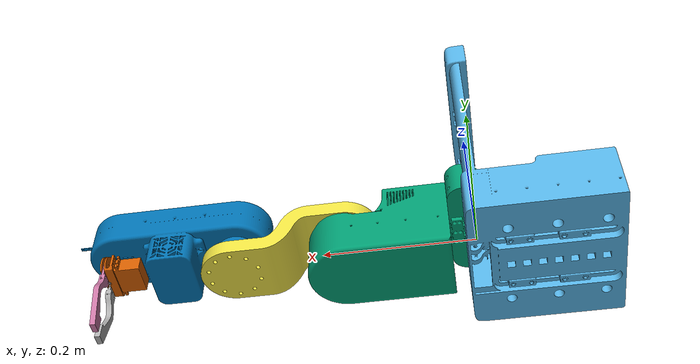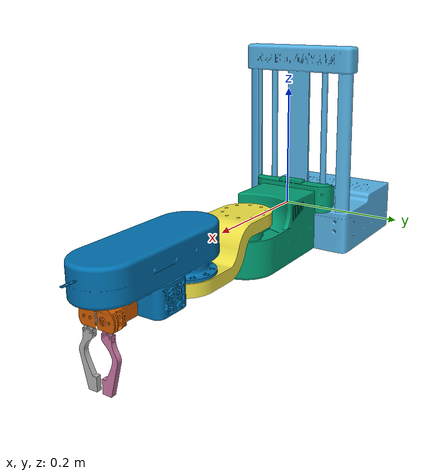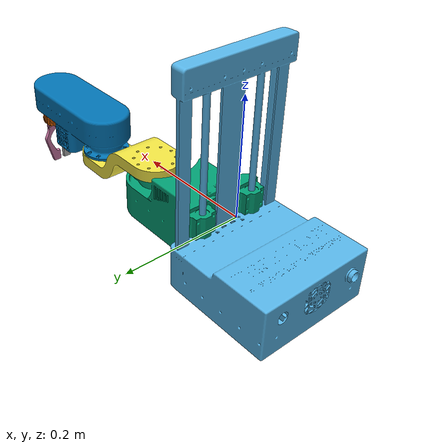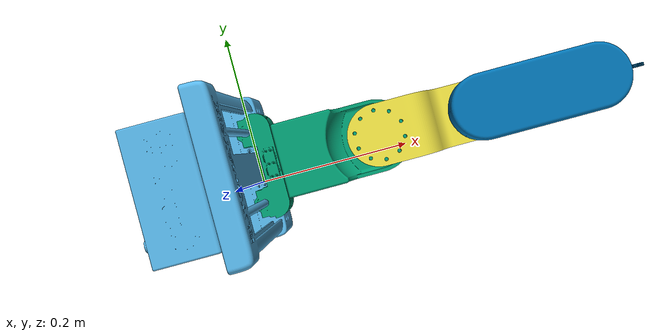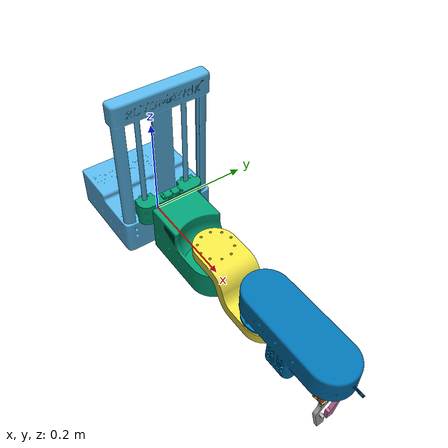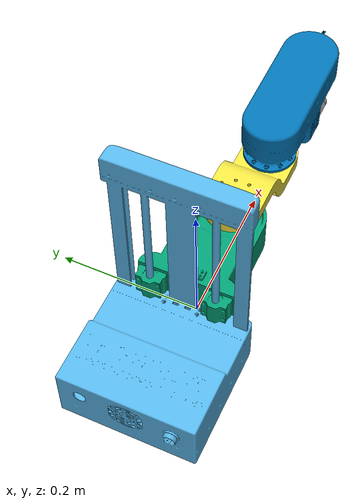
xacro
<?xml version="1.0" encoding="utf-8"?>
<robot name="my_robot" xmlns:xacro="http://www.ros.org/wiki/xacro">

    <xacro:property name="PI" value="3.14159265359" />
    <xacro:property name="mesh_scale" value="0.001 0.001 0.001" />

    <link name="world"/>

    <joint name="world_to_base" type="fixed">
        <parent link="world"/>
        <child link="BASE"/>
        <origin xyz="0 0 0" rpy="${PI/2} 0 ${PI/2}"/>
    </joint>

    <link name="BASE">
        <inertial>
            <origin xyz="0.020675 -0.004607 -0.059678" rpy="0.0 0.0 0.0" />
            <mass value="12.084188" />
            <inertia ixx="0.137534" iyy="0.082523" izz="0.137154" ixy="0.000139" iyz="-0.026951" ixz="-0.000018" />
        </inertial>
        <visual>
            <geometry><mesh filename="package://my_robot_description/meshes/BASE.stl" scale="${mesh_scale}" /></geometry>
        </visual>
        <collision>
            <geometry><mesh filename="package://my_robot_description/meshes/BASE.stl" scale="${mesh_scale}" /></geometry>
        </collision>
    </link>

    <joint name="BASE_Slider-1" type="prismatic">
        <origin xyz="-0.026999 -0.00005 0.0" rpy="0 0 -${PI}" />
        <parent link="BASE" />
        <child link="LINK1" />
        <axis xyz="0 -1 0" />
        <limit lower="0.0" upper="0.183" effort="1000" velocity="1.0" />
    </joint>

    <link name="LINK1">
        <inertial>
            <origin xyz="-0.048303 0.005349 0.097181" rpy="0.0 0.0 0.0" />
            <mass value="5.265839" />
            <inertia ixx="0.024010" iyy="0.024414" izz="0.009172" ixy="-0.000094" iyz="-0.004167" ixz="-0.000185" />
        </inertial>
        <visual>
            <origin xyz="-0.026999 -0.003849 0.0" rpy="0 0 ${PI}" />
            <geometry><mesh filename="package://my_robot_description/meshes/LINK1.stl" scale="${mesh_scale}" /></geometry>
        </visual>
        <collision>
            <origin xyz="-0.026999 -0.003849 0.0" rpy="0 0 ${PI}" />
            <geometry><mesh filename="package://my_robot_description/meshes/LINK1.stl" scale="${mesh_scale}" /></geometry>
        </collision>
    </link>

    <joint name="LINK1_Revolute-2" type="revolute">
        <origin xyz="-0.0475 -0.016304 0.168999" rpy="0 0 0" />
        <parent link="LINK1" />
        <child link="LINK2" />
        <axis xyz="0 1 0" />
        <limit lower="-${PI/2}" upper="${PI/2}" effort="1000" velocity="1.0" />
    </joint>

    <link name="LINK2">
        <inertial>
            <origin xyz="0.0 0.020884 0.070195" rpy="0.0 0.0 0.0" />
            <mass value="2.538582" />
            <inertia ixx="0.008956" iyy="0.008908" izz="0.002949" ixy="0.0" iyz="-0.002911" ixz="0.0" />
        </inertial>
        <visual>
            <origin xyz="0.0205 0.012455 -0.169" rpy="0 0 ${PI}" />
            <geometry><mesh filename="package://my_robot_description/meshes/LINK2.stl" scale="${mesh_scale}" /></geometry>
        </visual>
        <collision>
            <origin xyz="0.0205 0.012455 -0.169" rpy="0 0 ${PI}" />
            <geometry><mesh filename="package://my_robot_description/meshes/LINK2.stl" scale="${mesh_scale}" /></geometry>
        </collision>
    </link>

    <joint name="LINK2_Revolute-3" type="revolute">
        <origin xyz="0.0 0.041999 0.1402" rpy="0 0 0" />
        <parent link="LINK2" />
        <child link="LINK3" />
        <axis xyz="0 1 0" />
        <limit lower="-${PI/2}" upper="${PI/2}" effort="1000" velocity="1.0" />
    </joint>

    <link name="LINK3">
        <inertial>
            <origin xyz="0.0 -0.037572 0.062436" rpy="0.0 0.0 0.0" />
            <mass value="4.302962" />
            <inertia ixx="0.019982" iyy="0.020398" izz="0.004942" ixy="-0.000024" iyz="0.000921" ixz="0.000037" />
        </inertial>
        <visual>
            <origin xyz="0.0205 -0.029544 -0.3092" rpy="0 0 ${PI}" />
            <geometry><mesh filename="package://my_robot_description/meshes/LINK3.stl" scale="${mesh_scale}" /></geometry>
        </visual>
        <collision>
            <origin xyz="0.0205 -0.029544 -0.3092" rpy="0 0 ${PI}" />
            <geometry><mesh filename="package://my_robot_description/meshes/LINK3.stl" scale="${mesh_scale}" /></geometry>
        </collision>
    </link>

    <joint name="LINK3_Revolute-4" type="revolute">
        <origin xyz="0.0 -0.024605 0.167999" rpy="${PI} 0 0" />
        <parent link="LINK3" />
        <child link="LINK4" />
        <axis xyz="0 -1 0" />
        <limit lower="0.0" upper="${2*PI}" effort="1000" velocity="1.0" />
    </joint>

    <link name="LINK4">
        <inertial>
            <origin xyz="0.0 -0.017032 0.020227" rpy="0.0 0.0 0.0" />
            <mass value="0.320556" />
            <inertia ixx="0.000081" iyy="0.000118" izz="0.000071" ixy="0.0" iyz="0.000006" ixz="0.0" />
        </inertial>
        <visual>
            <origin xyz="0.477191 0.00469 -0.0205" rpy="0 -${PI/2} 0" />
            <geometry><mesh filename="package://my_robot_description/meshes/LINK4.stl" scale="${mesh_scale}" /></geometry>
        </visual>
        <collision>
            <origin xyz="0.477191 0.00469 -0.0205" rpy="0 -${PI/2} 0" />
            <geometry><mesh filename="package://my_robot_description/meshes/LINK4.stl" scale="${mesh_scale}" /></geometry>
        </collision>
    </link>

    <xacro:macro name="finger_link" params="prefix inertial_y inertial_z visual_z">
        <link name="${prefix}">
            <inertial>
                <origin xyz="0.052675 ${inertial_y} ${inertial_z}" rpy="0.0 0.0 0.0" />
                <mass value="0.059" />
                <inertia ixx="0.00001" iyy="0.000055" izz="0.000052" ixy="0.0" iyz="0.0" ixz="0.0" />
            </inertial>
            <visual>
                <origin xyz="-0.022694 -0.017951 ${visual_z}" rpy="0 0 ${PI/2}" />
                <geometry><mesh filename="package://my_robot_description/meshes/${prefix}.stl" scale="${mesh_scale}" /></geometry>
            </visual>
            <collision>
                <origin xyz="-0.022694 -0.017951 ${visual_z}" rpy="0 0 ${PI/2}" />
                <geometry><mesh filename="package://my_robot_description/meshes/${prefix}.stl" scale="${mesh_scale}" /></geometry>
            </collision>
        </link>
    </xacro:macro>

    <joint name="LINK4_Revolute-5" type="revolute">
        <origin xyz="-0.010058 -0.018 -0.002549" rpy="${PI/2} 0 -1.570806" />
        <parent link="LINK4" />
        <child link="FINGER1" />
        <axis xyz="0 -1 0" />
        <limit lower="0.0" upper="${PI/4}" effort="1000" velocity="1.0" />
    </joint>
    <xacro:finger_link prefix="FINGER1" inertial_y="0.002507" inertial_z="0.006236" visual_z="-0.487249" />

    <joint name="LINK4_Revolute-6" type="revolute">
        <origin xyz="0.010041 -0.018 -0.00355" rpy="${PI/2} 0 -1.570806" />
        <parent link="LINK4" />
        <child link="FINGER2" />
        <axis xyz="0 -1 0" />
        <limit lower="-${PI/4}" upper="0.0" effort="1000" velocity="1.0" />
        <mimic joint="LINK4_Revolute-5" multiplier="-1.0" offset="0.0" />
    </joint>
    <xacro:finger_link prefix="FINGER2" inertial_y="0.003507" inertial_z="-0.007208" visual_z="-0.467149" />

</robot>
